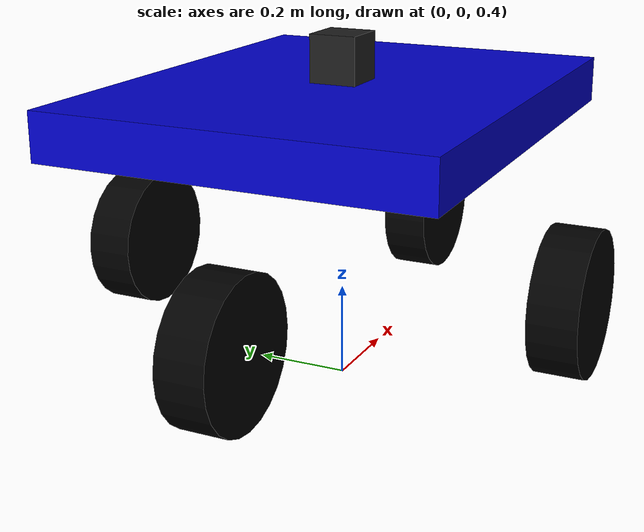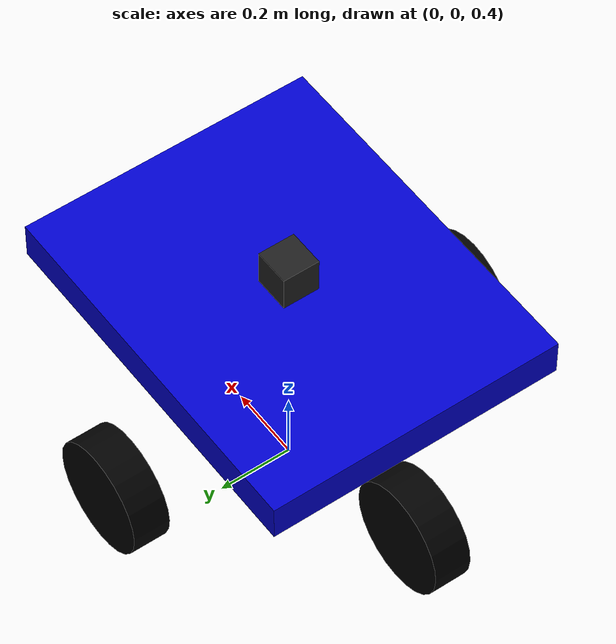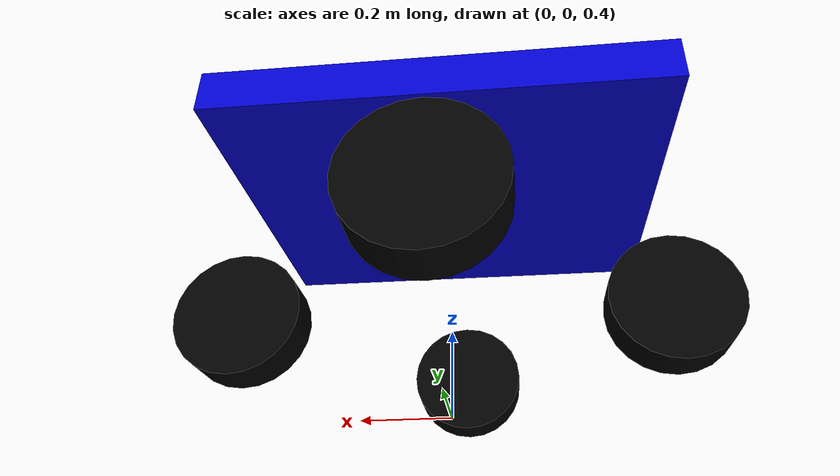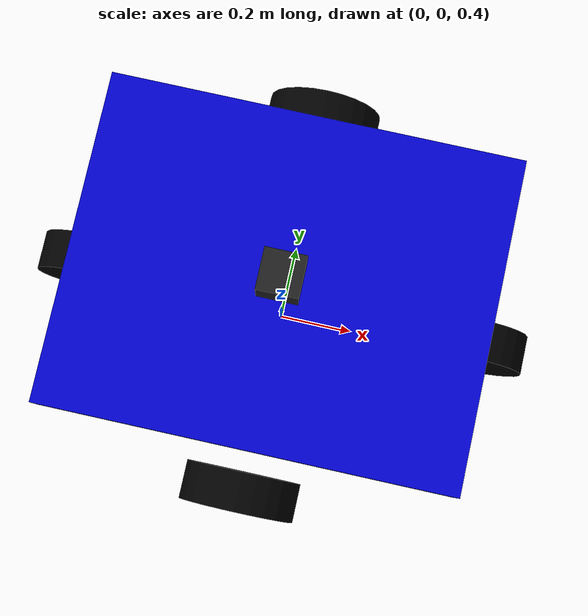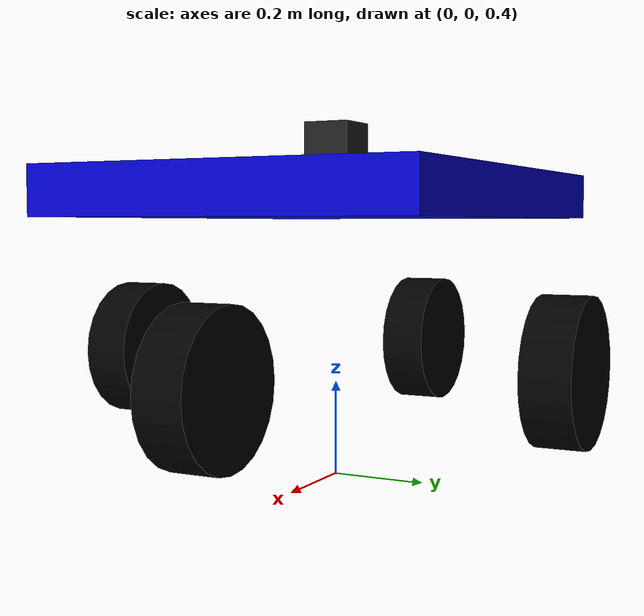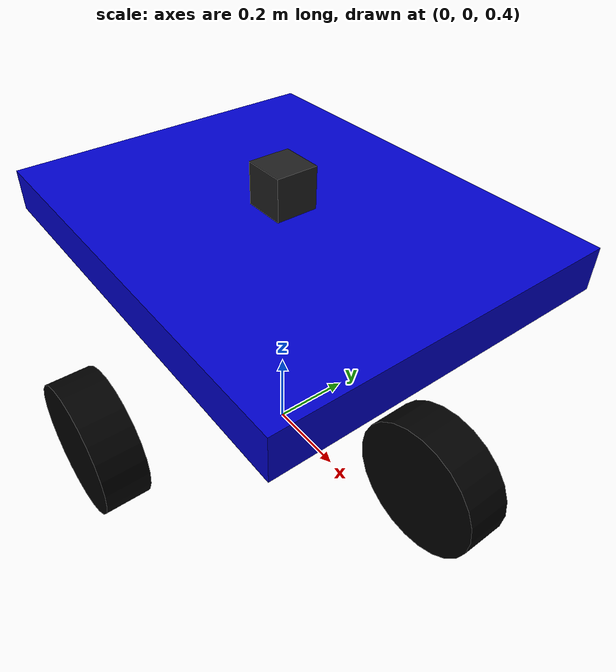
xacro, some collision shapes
<?xml version="1.0"?>
<robot name="R2D2_base" xmlns:xacro="http://ros.org/wiki/xacro">
<material name="blue">
  <color rgba="0 0 0.8 1"/>
</material>

<material name="black">
  <color rgba="0 0 0 1"/>
</material>

<material name="white">
  <color rgba="1 1 1 1"/>
</material>

<xacro:property name="package_name" value="imu_odom_combine" />
<!-- the vertical offset dist bet the car and the ground -->
<xacro:property name="up_z" value="0.5" />
<!-- the vertical offset dist bet the laser and car body -->
<xacro:property name="up_laser" value="0.1" />
<!-- the vertical offset dist bet the driving wheel and car body -->
<xacro:property name="down_wheel" value="0.35" />
<!-- the horizontal offset dist bet the driven wheel and car body -->
<xacro:property name="offset_wheel" value="0.5" />
<!-- the horizontal offset dist bet the laser and car body -->
<xacro:property name="offset_laser" value="0.4" />

<!-- dist bet left and right wheel -->
<xacro:property name="wheel_separation" value="1.0" />
<xacro:property name="wheel_radius" value="0.15" />

<xacro:property name="car_body_length" value="1" />
<xacro:property name="car_body_width" value="0.8" />
<xacro:property name="car_body_height" value="0.1" />
  <!--  1deg = 0.017rad -->
  <xacro:property name="imu_stdev" value="0.00017" />

  <xacro:macro name="default_inertial" params="mass">
    <inertial>
      <mass value="${mass}" />
      <inertia ixx="1.0" ixy="0.0" ixz="0.0" iyy="1.0" iyz="0.0" izz="1.0" />
    </inertial>
  </xacro:macro>

<link name="base_footprint">
</link>

<link name="base_link">
    <visual>
      <geometry>
         <box size="${car_body_length} ${car_body_width} ${car_body_height}"/>
      </geometry>
     <origin xyz="0 0 ${up_z}" rpy="0 0 0"/>
     <material name="blue"/>
    </visual>
    <collision>
      <geometry>
        <box size="${car_body_length} ${car_body_width} ${car_body_height}"/>
      </geometry>
     <origin xyz="0 0 ${up_z}" rpy="0 0 0"/>
    </collision>
    <xacro:default_inertial mass="50"/>
  </link>

  <link name="left_front_wheel">
    <visual>
      <geometry>
        <cylinder length="0.1" radius="${wheel_radius}"/>
      </geometry>
      <origin xyz="0 0 0" rpy="1.57 0 0"/>
      <material name="black"/>
    </visual>
    <collision>
      <geometry>
        <cylinder length="0.1" radius="${wheel_radius}"/>
      </geometry>
      <origin xyz="0 0 0" rpy="1.57 0 0"/>
    </collision>
    <xacro:default_inertial mass="1"/>
  </link>

<link name="right_front_wheel">
    <visual>
      <geometry>
        <cylinder length="0.1" radius="${wheel_radius}"/>
      </geometry>
      <origin xyz="0 0 0" rpy="1.57 0 0"/>
      <material name="black"/>
    </visual>
    <collision>
      <geometry>
        <cylinder length="0.1" radius="${wheel_radius}"/>
      </geometry>
      <origin xyz="0 0 0" rpy="1.57 0 0"/>
    </collision>
    <xacro:default_inertial mass="1"/>
  </link>

<link name="front_wheel">
    <visual>
      <geometry>
        <cylinder length="0.1" radius="${wheel_radius}"/>
      </geometry>
      <origin xyz="0 0 0" rpy="1.57 0 0"/>
      <material name="black"/>
    </visual>
    <collision>
      <geometry>
        <cylinder length="0.1" radius="${wheel_radius}"/>
      </geometry>
      <origin xyz="0 0 0" rpy="1.57 0 0"/>
    </collision>
    <xacro:default_inertial mass="0.01"/>
  </link>

<link name="rear_wheel">
    <visual>
      <geometry>
        <cylinder length="0.1" radius="${wheel_radius}"/>
      </geometry>
      <origin xyz="0 0 0" rpy="1.57 0 0"/>
      <material name="black"/>
    </visual>
    <collision>
      <geometry>
        <cylinder length="0.1" radius="${wheel_radius}"/>
      </geometry>
      <origin xyz="0 0 0" rpy="1.57 0 0"/>
    </collision>
    <xacro:default_inertial mass="0.01"/>
  </link>

  <!-- published int launch file -->
  <!-- if published in here the tf time will too fast than other link ,it will display error in rviz-->
  <joint name="base_footprint_to_base_link" type="fixed">
    <parent link="base_footprint"/>
    <child link="base_link"/>
    <origin xyz="0 0 0.5" rpy="0 0 0"/>
    <axis xyz="0 1 0"/>
  </joint>

  <joint name="left_front_wheel_joint" type="continuous">
    <parent link="base_link"/>
    <child link="left_front_wheel"/>
    <origin xyz="-0.0 ${wheel_separation/2} ${up_z-down_wheel}" rpy="0 0 0"/>
    <axis xyz="0 1 0"/>
  </joint>

  <joint name="right_front_wheel_joint" type="continuous">
    <parent link="base_link"/>
    <child link="right_front_wheel"/>
    <origin xyz="-0.0 ${-wheel_separation/2} ${up_z-down_wheel}" rpy="0 0 0" />
    <axis xyz="0 1 0"/>
  </joint>

  <joint name="front_wheel_joint" type="continuous">
    <parent link="base_link"/>
    <child link="front_wheel"/>
    <origin xyz="${offset_wheel} 0 ${up_z-down_wheel}" rpy="0 0 0" />
    <axis xyz="0 1 0"/>
  </joint>

  <joint name="rear_wheel_joint" type="continuous">
    <parent link="base_link"/>
    <child link="rear_wheel"/>
    <origin xyz="${-offset_wheel} 0 ${up_z-down_wheel}" rpy="0 0 0" />
    <axis xyz="0 1 0"/>
  </joint>
  <!--                   !!!scan!!!                                   -->
  <xacro:include filename="$(find ${package_name})/urdf/hokuyolaser_base.xacro" />
  <xacro:hokuyolaser parent_link="base_link">
    <origin xyz="0 0 ${up_z+up_laser}" rpy="0 0 0" />
  </xacro:hokuyolaser>
 <!--                     !!!imu!!!                                  -->
  <xacro:include filename="$(find ${package_name})/urdf/imu.gazebo.urdf.xacro" />
  <xacro:imu_gazebo parent_link="base_link" link="imu_link" imu_topic="imu_data" update_rate="50.0" stdev="${imu_stdev}" >
    <origin xyz="0 0 0" rpy="0 0 0" />
  </xacro:imu_gazebo>

<transmission name="left_front_wheel_trans">
  <type>transmission_interface/SimpleTransmission</type>
  <actuator name="$left_front_wheel_motor">
    <mechanicalReduction>1</mechanicalReduction>
  </actuator>
  <joint name="left_front_wheel_joint">
   <hardwareInterface>VelocityJointInterface</hardwareInterface>
  </joint>
</transmission>

<transmission name="right_front_wheel_trans">
  <type>transmission_interface/SimpleTransmission</type>
  <actuator name="$right_front_wheel_motor">
    <mechanicalReduction>1</mechanicalReduction>
  </actuator>
  <joint name="right_front_wheel_joint">
   <hardwareInterface>VelocityJointInterface</hardwareInterface>
  </joint>
</transmission>

<transmission name="front_wheel_trans">
  <type>transmission_interface/SimpleTransmission</type>
  <actuator name="$front_wheel_motor">
    <mechanicalReduction>1</mechanicalReduction>
  </actuator>
  <joint name="front_wheel_joint">
   <hardwareInterface>VelocityJointInterface</hardwareInterface>
  </joint>
</transmission>

<transmission name="rear_wheel_trans">
  <type>transmission_interface/SimpleTransmission</type>
  <actuator name="$rear_wheel_motor">
    <mechanicalReduction>1</mechanicalReduction>
  </actuator>
  <joint name="rear_wheel_joint">
   <hardwareInterface>VelocityJointInterface</hardwareInterface>
  </joint>
</transmission>

 <gazebo>
  <plugin name="gazebo_ros_control" filename="libgazebo_ros_control.so">
  <robotNamespace>/</robotNamespace>
  </plugin>
</gazebo>

</robot>

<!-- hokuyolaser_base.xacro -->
<robot xmlns:xacro="http://www.ros.org/wiki/xacro" name="hokuyolaser">

  <xacro:property name="laser_x" value="0.1" />
  <xacro:property name="laser_y" value="0.1" />
  <xacro:property name="laser_z" value="0.1" />

  <xacro:macro name="hokuyolaser" params="parent_link *joint_origin" >
    <!-- Hokuyo Laser -->
    <link name="hokuyo_link">

      <collision>
        <origin xyz="0 0 0" rpy="0 0 0"/>
        <geometry>
          <box size="${laser_x} ${laser_y} ${laser_z}"/>
        </geometry>
      </collision>

      <visual>
        <origin xyz="0 0 0" rpy="0 0 0"/>
        <geometry>
          <mesh filename="package://rrbot_description/meshes/hokuyo.dae"/>
        </geometry>
      </visual>

      <inertial>
        <mass value="1e-5" />
        <origin xyz="0 0 0" rpy="0 0 0"/>
        <inertia ixx="1e-6" ixy="0" ixz="0" iyy="1e-6" iyz="0" izz="1e-6" />
      </inertial>
    </link>

  <!-- hokuyo -->
    <gazebo reference="hokuyo_link">
      <material>Gazebo/Black</material>
      <sensor type="gpu_ray" name="head_hokuyo_sensor">
	  <!--sensor type="ray" name="head_hokuyo_sensor"-->
        <pose>0 0 0 0 0 0</pose>
        <!--visualize the scan  ray line chq -->
        <visualize>true</visualize>
        <update_rate>30</update_rate>
        <ray>
          <scan>
            <horizontal>
              <samples>7200</samples>
              <resolution>0.1</resolution>
              <min_angle>-3.1415926</min_angle>
              <max_angle>3.1415926</max_angle>
            </horizontal>
          </scan>
          <range>
            <min>0.001</min>
            <max>50.0</max>
            <resolution>0.001</resolution>
          </range>
          <noise>
            <type>gaussian</type>
            <mean>0.0</mean>
            <stddev>0.01</stddev>
          </noise>
        </ray>
        <plugin name="gazebo_ros_head_hokuyo_controller" filename="libgazebo_ros_gpu_laser.so">
		<!--plugin name="gazebo_ros_head_hokuyo_controller" filename="libgazebo_ros_laser.so"-->
          <!-- specify the publishing scan topic name  -->
          <topicName>scan</topicName>
          <frameName>hokuyo_link</frameName>
        </plugin>
      </sensor>
    </gazebo>

    <joint name="lase_joint" type="fixed">
      <parent link="${parent_link}" />
      <child link="hokuyo_link" />
      <axis xyz="0 1 0" />
      <!-- origin cord spcified  outsidely -->
      <xacro:insert_block name="joint_origin"/>
    </joint>

  </xacro:macro>

</robot>

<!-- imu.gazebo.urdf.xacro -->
<robot xmlns:xacro="http://ros.org/wiki/xacro">

<xacro:macro name="imu_gazebo" params="parent_link link imu_topic update_rate stdev *joint_origin">
<!-- 1,create link -->
<link name="${link}" />
<!-- 2,simulates IMU sensor. Measurements are computed by the ROS plugin -->
  <gazebo>
    <plugin name="imu_plugin" filename="libgazebo_ros_imu.so">
      <alwaysOn>true</alwaysOn>
      <bodyName>${link}</bodyName>
      <topicName>${imu_topic}</topicName>
      <serviceName>imu_service</serviceName>
      <gaussianNoise>${stdev * stdev}</gaussianNoise>
      <updateRate>${update_rate}</updateRate>
    </plugin>
  </gazebo>
<!-- 3,create joint relation -->
    <joint name="base_link_to_imu_joint" type="fixed">
      <parent link="${parent_link}" />
      <child link="${link}" />
      <axis xyz="0 1 0" />
      <!-- origin cord spcified  outsidely -->
      <xacro:insert_block name="joint_origin"/>
    </joint>
 </xacro:macro>
</robot>
